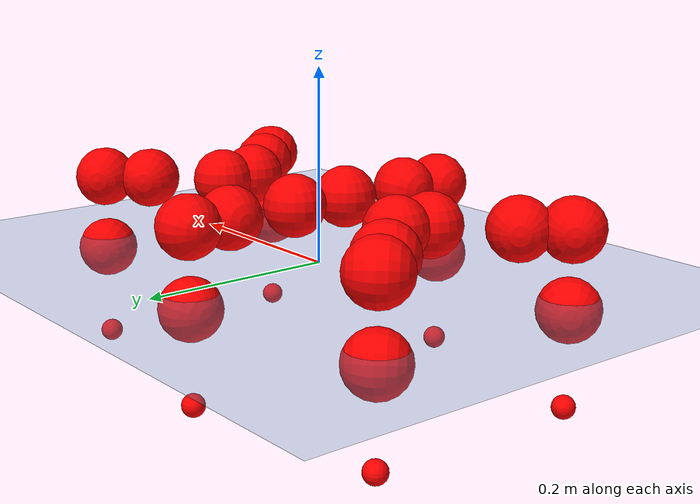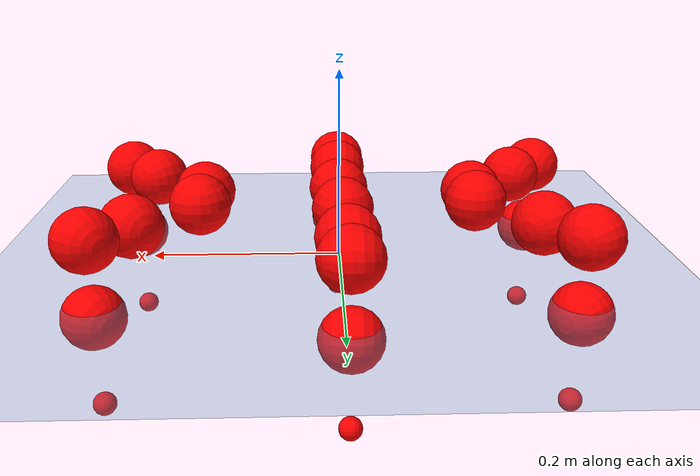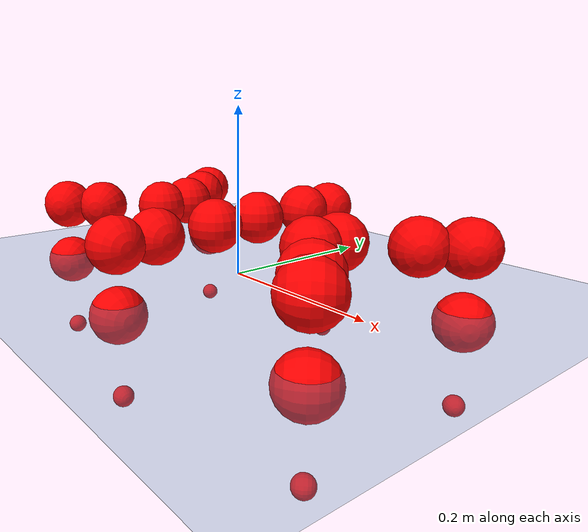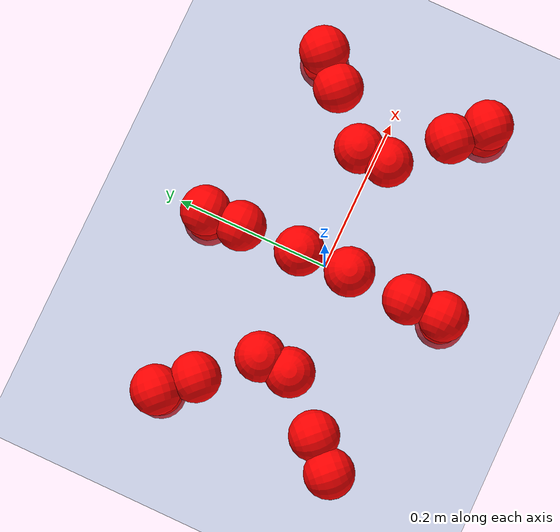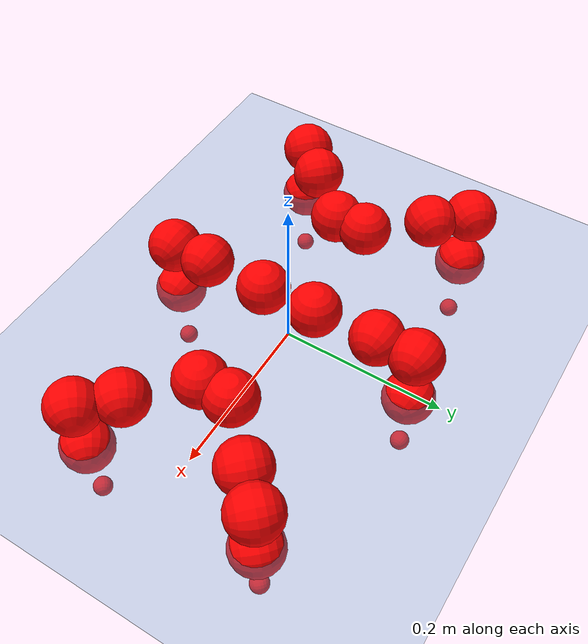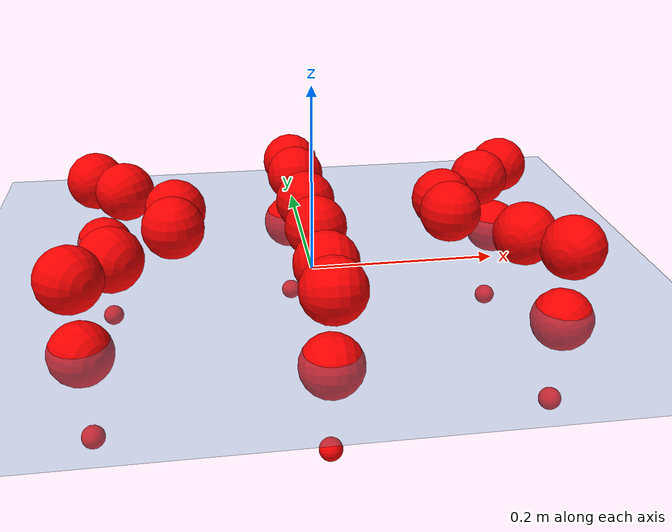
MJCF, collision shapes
<mujoco model="Golem">
  <compiler angle="radian" assetdir="assets" balanceinertia="true" inertiafromgeom="false"/>

  <option timestep="0.005" density="1.2" viscosity="2e-05"/>

  <size nkey="1"/>

  <visual>
    <quality shadowsize="8192"/>
    <map shadowclip="0.5"/>
  </visual>

  <default>
    <default class="/">
      <joint armature="0.01" damping="0.01" frictionloss="0.01"/>
      <geom contype="0" conaffinity="0" group="1" solref="-1000 -80"/>
      <site size="0.01 0.005 0.005" group="5"/>
      <general forcelimited="true" biastype="affine" gainprm="25" biasprm="0 -25 -0.5"/>
      <default class="visual">
        <geom type="mesh" group="2"/>
      </default>
      <default class="collision">
        <geom group="3"/>
      </default>
      <default class="foot">
        <geom size="0.01 0 0" condim="6" group="4" priority="1" solimp="0.015 1 0.01"/>
      </default>
      <default class="reward_collision_sphere">
        <geom group="5" rgba="1 0 0 1"/>
      </default>
    </default>
  </default>

  <asset>
    <texture type="skybox" colorspace="auto" name="//unnamed_texture_0" builtin="gradient" rgb1="0.95 0.95 0.95" rgb2="0.95 0.95 0.95" width="100" height="600"/>
    <texture type="2d" colorspace="auto" name="texplane" builtin="checker" rgb1="0.345 0.575 0.748" rgb2="0.345 0.575 0.748" markrgb="1 1 1" width="512" height="512"/>
    <material name="MatPlane" class="/" texture="texplane" texuniform="true" texrepeat="2 2" specular="0.9"/>
    <mesh name="body" class="/" file="body.stl" scale="0.001 0.001 0.001"/>
    <mesh name="coxa" class="/" file="coxa.stl" scale="0.001 0.001 0.001"/>
    <mesh name="femur" class="/" file="femur.stl" scale="0.001 0.001 0.001"/>
    <mesh name="tibia" class="/" file="tibia.stl" scale="0.001 0.001 0.001"/>
    <mesh name="tarsus" class="/" file="tarsus.stl" scale="0.001 0.001 0.001"/>
  </asset>

  <worldbody>
    <geom name="floor" class="/" size="100 100 0.125" type="plane" group="0" material="MatPlane"/>
    <light name="toplight_shadow" class="/" pos="0 0 5" dir="0.0990148 0.0990148 -0.990148" type="directional" ambient="0.04 0.04 0.04" diffuse="0.55 0.55 0.55" specular="0.12 0.12 0.12"/>
    <light name="toplight_fill" class="/" pos="0 0 5" dir="0.0990148 0.0990148 -0.990148" type="directional" castshadow="false" ambient="0.04 0.04 0.04" diffuse="0.3 0.3 0.3" specular="0.08 0.08 0.08"/>
    <body name="trunk" pos="4.46502e-05 5.47556e-06 -5.10731e-05" quat="1 0.000722513 1.46899e-05 -0.000262161">
      <inertial pos="-0.000195352 -0.000374383 -0.00364454" quat="1 -1.88195e-05 -0.000416395 8.45363e-05" mass="1.87959" diaginertia="0.00620401 0.000200214 0.010832"/>
      <joint name="//unnamed_joint_0" type="free"/>
      <geom name="//unnamed_geom_1" class="/" pos="0 0 0.065071" quat="1 0 0 0" type="mesh" rgba="0.9 0.9 0.9 1" mesh="body"/>
      <site name="imu" class="/" pos="0.124371 0.00384938 0.102284" size="0.00794233"/>
      <camera name="track" class="/" pos="0 -0.91429 0" quat="0.707107 0.707107 0 0" mode="trackcom"/>
      <camera name="ego_camera" class="/" pos="0.118147 0 0.101673" quat="-0.5 -0.5 0.5 0.5"/>
      <body name="coxa_RR" pos="-0.162467 -0.0383118 0.0655638" quat="0.382402 0.000678265 -0.000332224 -0.923996">
        <inertial pos="-0.000384983 0.000240141 0.000864207" quat="0.999997 -0.00132559 0.000949294 0.00203792" mass="0.10024" diaginertia="0.00621796 0.000199578 0.0109368"/>
        <joint name="coxa_joint_RR" class="/" pos="0 0 0" axis="-0.00450011 -0.00133502 -0.999989" range="-3.14037 3.1184" armature="0.00794574" damping="0.00687972" frictionloss="0.00765068"/>
        <geom name="//unnamed_geom_2" class="/" type="mesh" rgba="0.2 0.2 0.2 1" mesh="coxa"/>
        <geom name="//unnamed_geom_3" class="reward_collision_sphere" size="0.0317693" pos="-0.0272646 0 0"/>
        <body name="femur_RR" pos="0.0552382 0.00164582 -0.00133225" quat="0.499999 -0.500015 0.499993 0.499994">
          <inertial pos="2.81943e-05 0.000132138 -0.00013799" quat="1 0.000566744 0.000160255 -0.000254372" mass="0.100139" diaginertia="0.00613551 0.000197714 0.0109521"/>
          <joint name="femur_joint_RR" class="/" pos="0 0 0" axis="0.000336705 -0.00334572 -0.999994" range="-3.12084 3.13326" armature="0.00772636" damping="0.00151111" frictionloss="0.00814544"/>
          <geom name="//unnamed_geom_4" class="/" type="mesh" rgba="0.9 0.9 0.9 1" mesh="femur"/>
          <geom name="//unnamed_geom_5" class="reward_collision_sphere" size="0.0317693"/>
          <body name="tibia_RR" pos="-0.000443351 -0.049173 0.00143058" quat="0.000120699 1 4.17793e-05 0.000129003">
            <inertial pos="0.00016858 -0.00028485 7.23262e-05" quat="1 0.000404681 0.000116219 0.000888933" mass="0.100589" diaginertia="0.00625027 0.000199471 0.010808"/>
            <joint name="tibia_joint_RR" class="/" pos="0 0 0" axis="-0.000339208 0.00413716 0.999991" range="-3.11743 3.13375" armature="0.00786881" damping="0" frictionloss="0.00775248"/>
            <geom name="//unnamed_geom_6" class="/" type="mesh" rgba="0.2 0.2 0.2 1" mesh="tibia"/>
            <geom name="//unnamed_geom_7" class="reward_collision_sphere" size="0.0317693"/>
            <body name="tarsus_RR" pos="0.0785811 -1.26338e-05 -0.0010923" quat="1 0.000263071 0.000219597 -6.96481e-05">
              <inertial pos="0.0556288 0.000416031 0.000239306" quat="0.500578 0.498659 0.500624 0.500137" mass="0.0987262" diaginertia="0.00607132 0.000199342 0.0106576"/>
              <joint name="tarsus_joint_RR" class="/" pos="0 0 0" axis="-0.000642599 -0.000974847 0.999999" range="-3.11948 3.12881" armature="0.00806168" damping="0.000140079" frictionloss="0.00808464"/>
              <geom name="//unnamed_geom_8" class="/" type="mesh" rgba="0.9 0.9 0.9 1" mesh="tarsus"/>
              <geom name="foot_1" class="foot" size="0.00761702" pos="0.101788 0 0" quat="0 -0.707107 0 0.707107"/>
              <geom name="//unnamed_geom_10" class="reward_collision_sphere" size="0.0317693"/>
              <geom name="//unnamed_geom_11" class="reward_collision_sphere" size="0.0119135" pos="0.0976983 0 0"/>
              <site name="foot_1" class="foot" pos="0.101788 0 0" quat="0 -0.707107 0 0.707107" size="0.00794233"/>
            </body>
          </body>
        </body>
      </body>
      <body name="coxa_RM" pos="-0.000421173 -0.0609059 0.0648025" quat="0.707375 3.98515e-05 -0.000240606 -0.706839">
        <inertial pos="-0.000592798 -0.000630701 0.000145584" quat="1 0.000281301 8.28937e-05 -0.000937699" mass="0.099806" diaginertia="0.00613574 0.000200951 0.0109512"/>
        <joint name="coxa_joint_RM" class="/" pos="0 0 0" axis="-0.000797792 -0.00540256 -0.999985" range="-3.13884 3.14478" armature="0.00847419" damping="0.00725379" frictionloss="0.00804589"/>
        <geom name="//unnamed_geom_12" class="/" type="mesh" rgba="0.2 0.2 0.2 1" mesh="coxa"/>
        <geom name="//unnamed_geom_13" class="reward_collision_sphere" size="0.0317693" pos="-0.0272646 0 0"/>
        <body name="femur_RM" pos="0.0518351 -0.000982466 -0.000987072" quat="0.499923 -0.500076 0.499977 0.500024">
          <inertial pos="-0.000580509 -0.000126584 9.6017e-05" quat="1 -0.000135999 7.82693e-05 5.30949e-05" mass="0.0988929" diaginertia="0.00609627 0.000201691 0.0109775"/>
          <joint name="femur_joint_RM" class="/" pos="0 0 0" axis="-0.000671565 0.00282376 -0.999996" range="-3.12042 3.14508" armature="0.00787232" damping="0.000672414" frictionloss="0.0077704"/>
          <geom name="//unnamed_geom_14" class="/" type="mesh" rgba="0.9 0.9 0.9 1" mesh="femur"/>
          <geom name="//unnamed_geom_15" class="reward_collision_sphere" size="0.0317693"/>
          <body name="tibia_RM" pos="0.00149702 -0.0481256 -0.00069452" quat="-3.00753e-05 1 0.000193313 0.000296338">
            <inertial pos="-0.000719238 -0.000604218 -0.00061527" quat="0.999997 0.000437536 0.00155727 0.00178965" mass="0.0999039" diaginertia="0.00624219 0.000198688 0.0108713"/>
            <joint name="tibia_joint_RM" class="/" pos="0 0 0" axis="-0.000900318 0.00102927 0.999999" range="-3.13258 3.15639" armature="0.00825313" damping="0.00101005" frictionloss="0.00849592"/>
            <geom name="//unnamed_geom_16" class="/" type="mesh" rgba="0.2 0.2 0.2 1" mesh="tibia"/>
            <geom name="//unnamed_geom_17" class="reward_collision_sphere" size="0.0317693"/>
            <body name="tarsus_RM" pos="0.0790043 0.000880386 0.00110673" quat="1 8.90888e-06 1.89614e-06 6.51142e-06">
              <inertial pos="0.0541507 0.00128137 0.000221297" quat="0.50065 0.499506 0.498619 0.501221" mass="0.100584" diaginertia="0.00613037 0.000197457 0.0109402"/>
              <joint name="tarsus_joint_RM" class="/" pos="0 0 0" axis="-0.000481594 -0.000475604 1" range="-3.11673 3.11901" armature="0.00852035" damping="0.00120887" frictionloss="0.00788421"/>
              <geom name="//unnamed_geom_18" class="/" type="mesh" rgba="0.9 0.9 0.9 1" mesh="tarsus"/>
              <geom name="foot_2" class="foot" size="0.0082701" pos="0.101788 0 0" quat="0 -0.707107 0 0.707107"/>
              <geom name="//unnamed_geom_20" class="reward_collision_sphere" size="0.0317693"/>
              <geom name="//unnamed_geom_21" class="reward_collision_sphere" size="0.0119135" pos="0.0976983 0 0"/>
              <site name="foot_2" class="foot" pos="0.101788 0 0" quat="0 -0.707107 0 0.707107" size="0.00794233"/>
            </body>
          </body>
        </body>
      </body>
      <body name="coxa_RF" pos="0.162312 -0.038812 0.0668115" quat="0.923877 -1.88861e-05 3.89305e-06 -0.38269">
        <inertial pos="0.000407259 -0.00191517 -0.000302934" quat="0.999999 0.00021532 0.0011801 0.000510727" mass="0.100967" diaginertia="0.00618919 0.000200669 0.0108945"/>
        <joint name="coxa_joint_RF" class="/" pos="0 0 0" axis="0.0029744 0.00364757 -0.999989" range="-3.11973 3.15752" armature="0.00822538" damping="0" frictionloss="0.00774018"/>
        <geom name="//unnamed_geom_22" class="/" type="mesh" rgba="0.2 0.2 0.2 1" mesh="coxa"/>
        <geom name="//unnamed_geom_23" class="reward_collision_sphere" size="0.0317693" pos="-0.0272646 0 0"/>
        <body name="femur_RF" pos="0.0560922 0.00144749 -0.00199852" quat="0.4998 -0.499893 0.500343 0.499964">
          <inertial pos="-0.000132855 -0.000156079 0.00100854" quat="0.999984 0.000473164 0.00315151 0.00459034" mass="0.100247" diaginertia="0.0062439 0.000196618 0.0108357"/>
          <joint name="femur_joint_RF" class="/" pos="0 0 0" axis="0.00156664 0.00254109 -0.999996" range="-3.14599 3.13789" armature="0.0081317" damping="0" frictionloss="0.00759703"/>
          <geom name="//unnamed_geom_24" class="/" type="mesh" rgba="0.9 0.9 0.9 1" mesh="femur"/>
          <geom name="//unnamed_geom_25" class="reward_collision_sphere" size="0.0317693"/>
          <body name="tibia_RF" pos="0.00021713 -0.0502385 -0.000373525" quat="2.46767e-06 1 -2.42553e-06 -2.61895e-06">
            <inertial pos="0.000453485 -0.000592664 0.000781663" quat="0.999998 0.00181835 -0.00112746 0.000333589" mass="0.0995452" diaginertia="0.00615749 0.00020055 0.0108896"/>
            <joint name="tibia_joint_RF" class="/" pos="0 0 0" axis="0.00133512 -0.000760899 0.999999" range="-3.141 3.13955" armature="0.00815827" damping="0.010134" frictionloss="0.00792173"/>
            <geom name="//unnamed_geom_26" class="/" type="mesh" rgba="0.2 0.2 0.2 1" mesh="tibia"/>
            <geom name="//unnamed_geom_27" class="reward_collision_sphere" size="0.0317693"/>
            <body name="tarsus_RF" pos="0.0801317 0.000211464 0.000518096" quat="1 0.000115738 0.000221663 0.000401837">
              <inertial pos="0.053507 0.000354514 0.00142317" quat="0.499888 0.499897 0.499666 0.500549" mass="0.0999295" diaginertia="0.00618934 0.000195858 0.0107193"/>
              <joint name="tarsus_joint_RF" class="/" pos="0 0 0" axis="0.00745468 0.00350109 0.999966" range="-3.11623 3.13443" armature="0.0079782" damping="0" frictionloss="0.00776578"/>
              <geom name="//unnamed_geom_28" class="/" type="mesh" rgba="0.9 0.9 0.9 1" mesh="tarsus"/>
              <geom name="foot_3" class="foot" size="0.00795199" pos="0.101788 0 0" quat="0 -0.707107 0 0.707107"/>
              <geom name="//unnamed_geom_30" class="reward_collision_sphere" size="0.0317693"/>
              <geom name="//unnamed_geom_31" class="reward_collision_sphere" size="0.0119135" pos="0.0976983 0 0"/>
              <site name="foot_3" class="foot" pos="0.101788 0 0" quat="0 -0.707107 0 0.707107" size="0.00794233"/>
            </body>
          </body>
        </body>
      </body>
      <body name="coxa_LR" pos="-0.160337 0.0404794 0.0675439" quat="0.382771 0.000450184 -0.000240082 0.923843">
        <inertial pos="0.00112484 -0.000651351 0.00165119" quat="1 4.01247e-05 7.68085e-05 -4.71242e-06" mass="0.0996952" diaginertia="0.00620274 0.00019843 0.010799"/>
        <joint name="coxa_joint_LR" class="/" pos="0 0 0" axis="0.00343486 0.0016229 -0.999993" range="-3.14295 3.14313" armature="0.00827834" damping="0.00575608" frictionloss="0.00801587"/>
        <geom name="//unnamed_geom_32" class="/" type="mesh" rgba="0.2 0.2 0.2 1" mesh="coxa"/>
        <geom name="//unnamed_geom_33" class="reward_collision_sphere" size="0.0317693" pos="-0.0272646 0 0"/>
        <body name="femur_LR" pos="0.0551331 -0.0039365 -0.00205662" quat="0.499941 -0.500215 0.499543 0.5003">
          <inertial pos="-0.000873927 -0.000586299 -5.19621e-05" quat="0.999999 -0.000898676 0.000500078 0.000308434" mass="0.0992314" diaginertia="0.00617166 0.000199299 0.0106973"/>
          <joint name="femur_joint_LR" class="/" pos="0 0 0" axis="-0.00120392 0.00256702 0.999996" range="-3.15746 3.17046" armature="0.0078831" damping="0.00844827" frictionloss="0.00850071"/>
          <geom name="//unnamed_geom_34" class="/" type="mesh" rgba="0.9 0.9 0.9 1" mesh="femur"/>
          <geom name="//unnamed_geom_35" class="reward_collision_sphere" size="0.0317693"/>
          <body name="tibia_LR" pos="0.000291825 -0.0507375 -0.00229745" quat="-0.000287686 1 -0.000110066 -4.73701e-05">
            <inertial pos="-0.000900049 0.000279932 -8.17185e-05" quat="0.999999 -0.000545259 -0.000892417 -0.000496002" mass="0.100875" diaginertia="0.0061695 0.000198079 0.0108152"/>
            <joint name="tibia_joint_LR" class="/" pos="0 0 0" axis="0.000185074 0.000156116 -1" stiffness="0.000465238" range="-3.14665 3.12585" armature="0.00746481" damping="0.000108841" frictionloss="0.00829881"/>
            <geom name="//unnamed_geom_36" class="/" type="mesh" rgba="0.2 0.2 0.2 1" mesh="tibia"/>
            <geom name="//unnamed_geom_37" class="reward_collision_sphere" size="0.0317693"/>
            <body name="tarsus_LR" pos="0.0797282 -0.000625412 0.00036835" quat="1 1.60034e-05 2.31139e-05 0.000134952">
              <inertial pos="0.0555949 0.00108614 0.000112132" quat="0.500648 0.499197 0.499409 0.500745" mass="0.100663" diaginertia="0.00620802 0.000202209 0.0108471"/>
              <joint name="tarsus_joint_LR" class="/" pos="0 0 0" axis="-0.000659694 -0.00152927 -0.999999" range="-3.11919 3.13955" armature="0.00791647" damping="0" frictionloss="0.00814459"/>
              <geom name="//unnamed_geom_38" class="/" type="mesh" rgba="0.9 0.9 0.9 1" mesh="tarsus"/>
              <geom name="foot_4" class="foot" size="0.00771055" pos="0.101788 0 0" quat="0.707107 0 -0.707107 0"/>
              <geom name="//unnamed_geom_40" class="reward_collision_sphere" size="0.0317693"/>
              <geom name="//unnamed_geom_41" class="reward_collision_sphere" size="0.0119135" pos="0.0976983 0 0"/>
              <site name="foot_4" class="foot" pos="0.101788 0 0" quat="0.707107 0 -0.707107 0" size="0.00794233"/>
            </body>
          </body>
        </body>
      </body>
      <body name="coxa_LM" pos="-0.00276188 0.0601609 0.0650748" quat="0.707075 -0.00106273 -0.000103036 0.707137">
        <inertial pos="0.00105005 0.000226823 0.000111502" quat="0.999998 0.000650813 0.00206863 0.000538242" mass="0.103085" diaginertia="0.00643206 0.000203801 0.0109513"/>
        <joint name="coxa_joint_LM" class="/" pos="0 0 0" axis="0.000440831 0.000249717 -1" stiffness="0.0033981" range="-3.14328 3.13286" armature="0.00811759" damping="0.00526466" frictionloss="0.00797615"/>
        <geom name="//unnamed_geom_42" class="/" type="mesh" rgba="0.2 0.2 0.2 1" mesh="coxa"/>
        <geom name="//unnamed_geom_43" class="reward_collision_sphere" size="0.0317693" pos="-0.0272646 0 0"/>
        <body name="femur_LM" pos="0.0512795 0.00198682 5.25684e-05" quat="0.499973 -0.499884 0.500026 0.500117">
          <inertial pos="-0.000193644 0.000422344 -0.000272785" quat="0.999993 -0.00139421 0.00252218 0.00234349" mass="0.098883" diaginertia="0.00613429 0.000195682 0.0106571"/>
          <joint name="femur_joint_LM" class="/" pos="0 0 0" axis="0.000368043 0.00050992 1" range="-3.14049 3.13317" armature="0.00828418" damping="0" frictionloss="0.00770069"/>
          <geom name="//unnamed_geom_44" class="/" type="mesh" rgba="0.9 0.9 0.9 1" mesh="femur"/>
          <geom name="//unnamed_geom_45" class="reward_collision_sphere" size="0.0317693"/>
          <body name="tibia_LM" pos="0.00114082 -0.0476663 0.000747818" quat="7.87094e-05 1 4.65505e-05 0.000245038">
            <inertial pos="-0.00118583 -0.000441887 0.000202383" quat="1 3.48446e-05 0.000234592 -2.3695e-05" mass="0.100632" diaginertia="0.00619957 0.000199537 0.0109472"/>
            <joint name="tibia_joint_LM" class="/" pos="0 0 0" axis="-0.000331507 -0.000289809 -1" stiffness="0.000842503" range="-3.14302 3.14118" armature="0.00792125" damping="0" frictionloss="0.00827214"/>
            <geom name="//unnamed_geom_46" class="/" type="mesh" rgba="0.2 0.2 0.2 1" mesh="tibia"/>
            <geom name="//unnamed_geom_47" class="reward_collision_sphere" size="0.0317693"/>
            <body name="tarsus_LM" pos="0.0803731 0.000201508 -0.000819273" quat="1 1.31278e-05 -3.63078e-05 -2.44394e-05">
              <inertial pos="0.0554419 0.000108524 -5.08523e-05" quat="0.5017 0.499923 0.498527 0.499844" mass="0.101556" diaginertia="0.00626269 0.000200727 0.010958"/>
              <joint name="tarsus_joint_LM" class="/" pos="0 0 0" axis="0.000482266 -0.00132781 -0.999999" stiffness="0.000971599" range="-3.14443 3.14329" armature="0.00791041" damping="0.00415459" frictionloss="0.00785523"/>
              <geom name="//unnamed_geom_48" class="/" type="mesh" rgba="0.9 0.9 0.9 1" mesh="tarsus"/>
              <geom name="foot_5" class="foot" size="0.00811371" pos="0.101788 0 0" quat="0.707107 0 -0.707107 0"/>
              <geom name="//unnamed_geom_50" class="reward_collision_sphere" size="0.0317693"/>
              <geom name="//unnamed_geom_51" class="reward_collision_sphere" size="0.0119135" pos="0.0976983 0 0"/>
              <site name="foot_5" class="foot" pos="0.101788 0 0" quat="0.707107 0 -0.707107 0" size="0.00794233"/>
            </body>
          </body>
        </body>
      </body>
      <body name="coxa_LF" pos="0.16337 0.0387262 0.065598" quat="0.923918 6.48539e-05 -0.000184613 0.382589">
        <inertial pos="-0.000637403 0.000419299 -0.000193571" quat="1 6.22064e-05 -0.000198695 -0.00027014" mass="0.0998441" diaginertia="0.00620438 0.000198529 0.0108666"/>
        <joint name="coxa_joint_LF" class="/" pos="0 0 0" axis="0.00124408 -0.000938005 -0.999999" range="-3.13045 3.15346" armature="0.0079702" damping="0" frictionloss="0.00758085"/>
        <geom name="//unnamed_geom_52" class="/" type="mesh" rgba="0.2 0.2 0.2 1" mesh="coxa"/>
        <geom name="//unnamed_geom_53" class="reward_collision_sphere" size="0.0317693" pos="-0.0272646 0 0"/>
        <body name="femur_LF" pos="0.0542063 -0.00223064 -0.00152547" quat="0.50013 -0.499807 0.500319 0.499743">
          <inertial pos="0.000406041 -0.000478811 -0.000628312" quat="0.999973 -0.000177705 -0.00163964 0.00713883" mass="0.100108" diaginertia="0.00622978 0.00019721 0.0109482"/>
          <joint name="femur_joint_LF" class="/" pos="0 0 0" axis="0.000311048 -0.00061428 1" range="-3.14274 3.15733" armature="0.00784431" damping="0" frictionloss="0.0073108"/>
          <geom name="//unnamed_geom_54" class="/" type="mesh" rgba="0.9 0.9 0.9 1" mesh="femur"/>
          <geom name="//unnamed_geom_55" class="reward_collision_sphere" size="0.0317693"/>
          <body name="tibia_LF" pos="-0.00013653 -0.0504042 -2.66683e-05" quat="1.82055e-05 1 5.75503e-05 -5.61065e-05">
            <inertial pos="0.000355269 -0.000216252 -0.000285768" quat="0.999989 -5.40387e-05 0.00212431 -0.00412611" mass="0.0993791" diaginertia="0.00623071 0.000201736 0.0109741"/>
            <joint name="tibia_joint_LF" class="/" pos="0 0 0" axis="0.000705794 0.00028496 -1" range="-3.16651 3.13767" armature="0.00758308" damping="0" frictionloss="0.00813665"/>
            <geom name="//unnamed_geom_56" class="/" type="mesh" rgba="0.2 0.2 0.2 1" mesh="tibia"/>
            <geom name="//unnamed_geom_57" class="reward_collision_sphere" size="0.0317693"/>
            <body name="tarsus_LF" pos="0.0801598 0.000148529 0.000314236" quat="1 -0.00012233 6.74822e-05 -3.75037e-06">
              <inertial pos="0.0569668 0.000455244 0.00169433" quat="0.499988 0.500203 0.499674 0.500136" mass="0.100859" diaginertia="0.00622489 0.000201604 0.0110374"/>
              <joint name="tarsus_joint_LF" class="/" pos="0 0 0" axis="-0.000460098 -0.000693711 -1" stiffness="0.0299709" range="-3.13543 3.11995" armature="0.00791132" damping="0.0249536" frictionloss="0.00814688"/>
              <geom name="//unnamed_geom_58" class="/" type="mesh" rgba="0.9 0.9 0.9 1" mesh="tarsus"/>
              <geom name="foot_6" class="foot" size="0.00794668" pos="0.101788 0 0" quat="0.707107 0 -0.707107 0"/>
              <geom name="//unnamed_geom_60" class="reward_collision_sphere" size="0.0317693"/>
              <geom name="//unnamed_geom_61" class="reward_collision_sphere" size="0.0119135" pos="0.0976983 0 0"/>
              <site name="foot_6" class="foot" pos="0.101788 0 0" quat="0.707107 0 -0.707107 0" size="0.00794233"/>
            </body>
          </body>
        </body>
      </body>
    </body>
  </worldbody>

  <contact>
    <pair class="/" geom1="floor" geom2="foot_1" name="//unnamed_contact_0"/>
    <pair class="/" geom1="floor" geom2="foot_2" name="//unnamed_contact_1"/>
    <pair class="/" geom1="floor" geom2="foot_3" name="//unnamed_contact_2"/>
    <pair class="/" geom1="floor" geom2="foot_4" name="//unnamed_contact_3"/>
    <pair class="/" geom1="floor" geom2="foot_5" name="//unnamed_contact_4"/>
    <pair class="/" geom1="floor" geom2="foot_6" name="//unnamed_contact_5"/>
  </contact>

  <actuator>
    <general name="coxa_joint_RR" class="/" joint="coxa_joint_RR" forcerange="-5.74524 5.74524" gainprm="18.4208" biasprm="0 -18.4208 -0.399744"/>
    <general name="femur_joint_RR" class="/" joint="femur_joint_RR" forcerange="-5.59861 5.59861" gainprm="18.4208" biasprm="0 -18.4208 -0.399744"/>
    <general name="tibia_joint_RR" class="/" joint="tibia_joint_RR" forcerange="-5.81172 5.81172" gainprm="18.4208" biasprm="0 -18.4208 -0.399744"/>
    <general name="tarsus_joint_RR" class="/" joint="tarsus_joint_RR" forcerange="-5.86851 5.86851" gainprm="18.4208" biasprm="0 -18.4208 -0.399744"/>
    <general name="coxa_joint_RM" class="/" joint="coxa_joint_RM" forcerange="-5.75759 5.75759" gainprm="18.4208" biasprm="0 -18.4208 -0.399744"/>
    <general name="femur_joint_RM" class="/" joint="femur_joint_RM" forcerange="-5.87239 5.87239" gainprm="18.4208" biasprm="0 -18.4208 -0.399744"/>
    <general name="tibia_joint_RM" class="/" joint="tibia_joint_RM" forcerange="-6.00476 6.00476" gainprm="18.4208" biasprm="0 -18.4208 -0.399744"/>
    <general name="tarsus_joint_RM" class="/" joint="tarsus_joint_RM" forcerange="-6.09684 6.09684" gainprm="18.4208" biasprm="0 -18.4208 -0.399744"/>
    <general name="coxa_joint_RF" class="/" joint="coxa_joint_RF" forcerange="-5.97905 5.97905" gainprm="18.4208" biasprm="0 -18.4208 -0.399744"/>
    <general name="femur_joint_RF" class="/" joint="femur_joint_RF" forcerange="-5.61343 5.61343" gainprm="18.4208" biasprm="0 -18.4208 -0.399744"/>
    <general name="tibia_joint_RF" class="/" joint="tibia_joint_RF" forcerange="-5.99612 5.99612" gainprm="18.4208" biasprm="0 -18.4208 -0.399744"/>
    <general name="tarsus_joint_RF" class="/" joint="tarsus_joint_RF" forcerange="-5.77958 5.77958" gainprm="18.4208" biasprm="0 -18.4208 -0.399744"/>
    <general name="coxa_joint_LR" class="/" joint="coxa_joint_LR" forcerange="-5.59576 5.59576" gainprm="18.4208" biasprm="0 -18.4208 -0.399744"/>
    <general name="femur_joint_LR" class="/" joint="femur_joint_LR" forcerange="-5.88542 5.88542" gainprm="18.4208" biasprm="0 -18.4208 -0.399744"/>
    <general name="tibia_joint_LR" class="/" joint="tibia_joint_LR" forcerange="-6.00126 6.00126" gainprm="18.4208" biasprm="0 -18.4208 -0.399744"/>
    <general name="tarsus_joint_LR" class="/" joint="tarsus_joint_LR" forcerange="-5.68954 5.68954" gainprm="18.4208" biasprm="0 -18.4208 -0.399744"/>
    <general name="coxa_joint_LM" class="/" joint="coxa_joint_LM" forcerange="-5.81751 5.81751" gainprm="18.4208" biasprm="0 -18.4208 -0.399744"/>
    <general name="femur_joint_LM" class="/" joint="femur_joint_LM" forcerange="-5.79474 5.79474" gainprm="18.4208" biasprm="0 -18.4208 -0.399744"/>
    <general name="tibia_joint_LM" class="/" joint="tibia_joint_LM" forcerange="-5.5084 5.5084" gainprm="18.4208" biasprm="0 -18.4208 -0.399744"/>
    <general name="tarsus_joint_LM" class="/" joint="tarsus_joint_LM" forcerange="-5.78338 5.78338" gainprm="18.4208" biasprm="0 -18.4208 -0.399744"/>
    <general name="coxa_joint_LF" class="/" joint="coxa_joint_LF" forcerange="-5.88096 5.88096" gainprm="18.4208" biasprm="0 -18.4208 -0.399744"/>
    <general name="femur_joint_LF" class="/" joint="femur_joint_LF" forcerange="-5.91363 5.91363" gainprm="18.4208" biasprm="0 -18.4208 -0.399744"/>
    <general name="tibia_joint_LF" class="/" joint="tibia_joint_LF" forcerange="-5.83227 5.83227" gainprm="18.4208" biasprm="0 -18.4208 -0.399744"/>
    <general name="tarsus_joint_LF" class="/" joint="tarsus_joint_LF" forcerange="-5.8617 5.8617" gainprm="18.4208" biasprm="0 -18.4208 -0.399744"/>
  </actuator>

  <sensor>
    <gyro site="imu" name="imu_angular_velocity"/>
    <velocimeter site="imu" name="imu_linear_velocity"/>
    <framelinvel objtype="site" objname="foot_1" name="foot_1_global_linear_velocity"/>
    <framelinvel objtype="site" objname="foot_2" name="foot_2_global_linear_velocity"/>
    <framelinvel objtype="site" objname="foot_3" name="foot_3_global_linear_velocity"/>
    <framelinvel objtype="site" objname="foot_4" name="foot_4_global_linear_velocity"/>
    <framelinvel objtype="site" objname="foot_5" name="foot_5_global_linear_velocity"/>
    <framelinvel objtype="site" objname="foot_6" name="foot_6_global_linear_velocity"/>
  </sensor>

  <keyframe>
    <key name="home" qpos="0 0 0.1457 1 0 0 0 0 0 0 0 0 0 0 0 0 0 0 0 0 0 0 0 0 0 0 0 0 0 0 0"/>
  </keyframe>
</mujoco>
